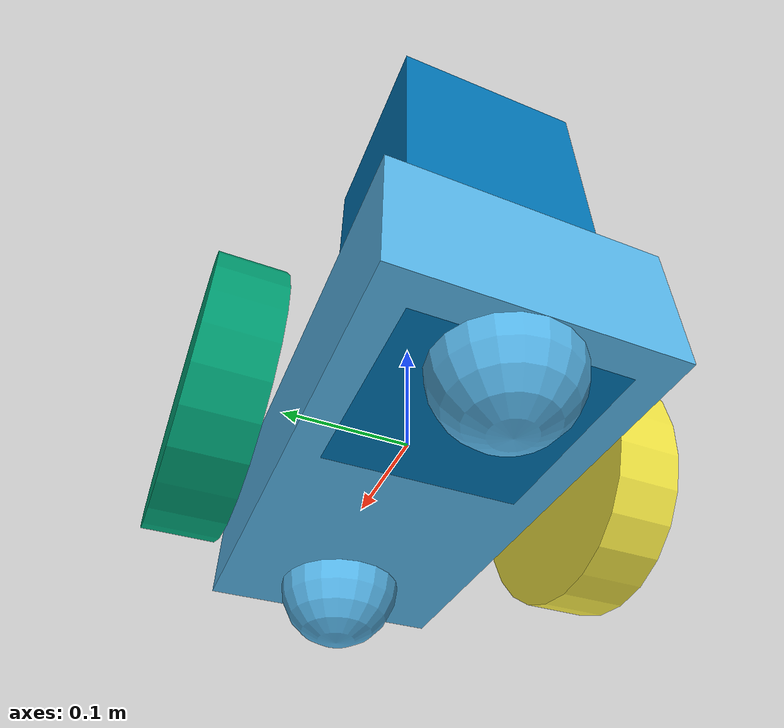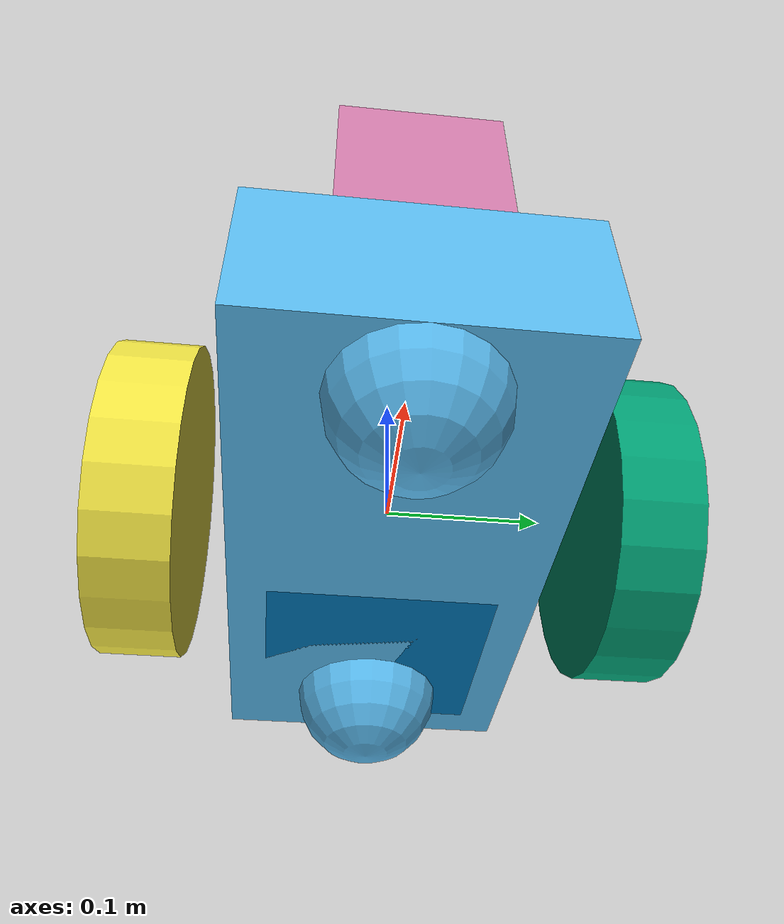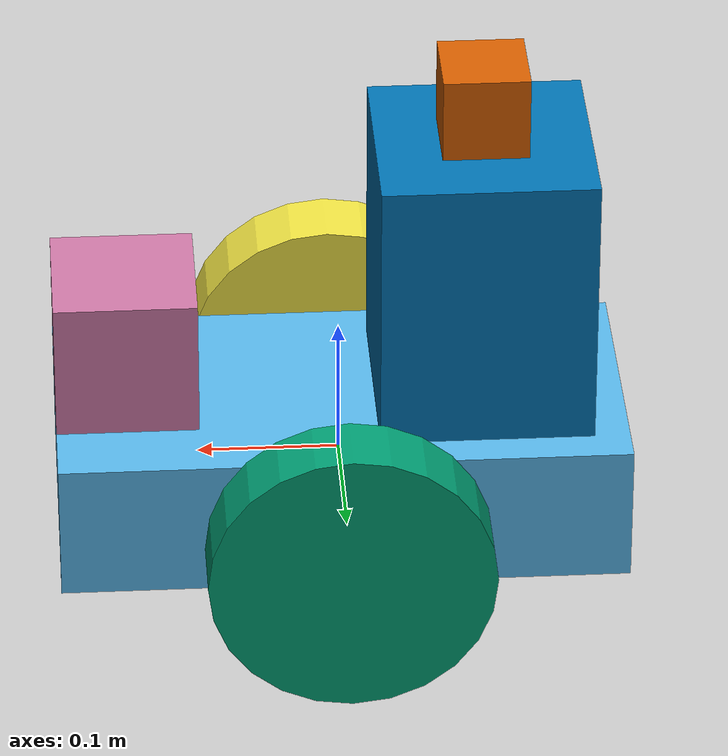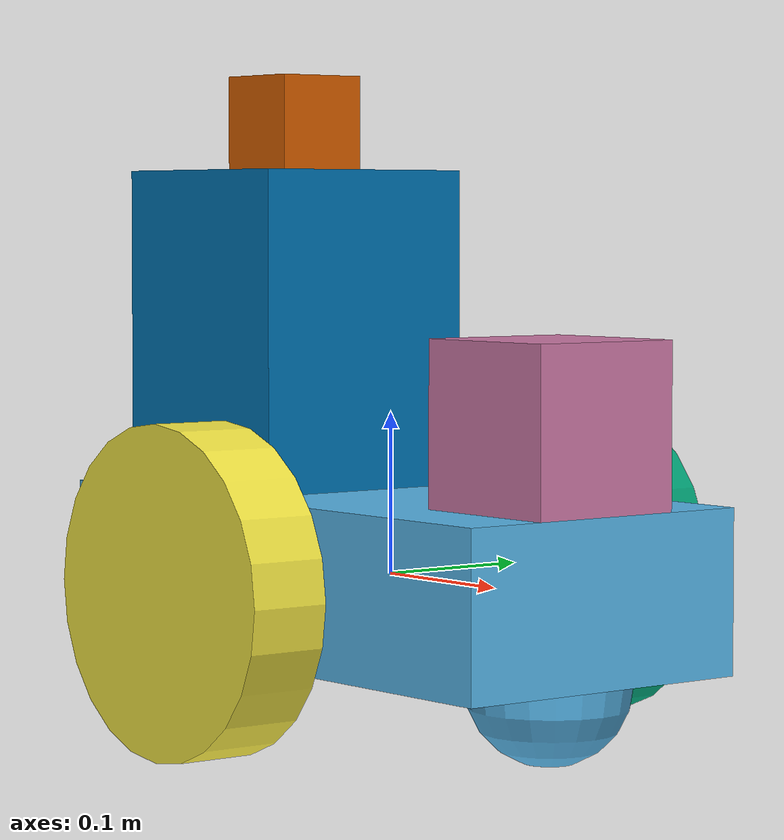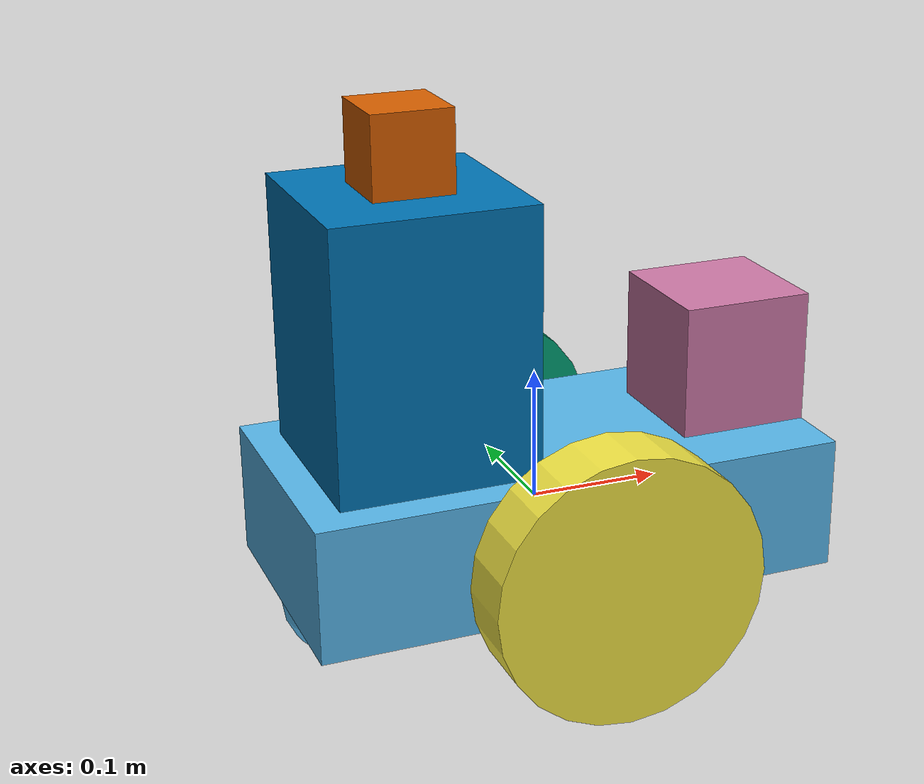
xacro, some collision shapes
<?xml version='1.0'?>

<robot name="udacity_bot" xmlns:xacro="http://www.ros.org/wiki/xacro">
<xacro:include filename="$(find udacity_bot)/urdf/udacity_bot.gazebo" />

  <link name="robot_footprint"></link>

  <joint name="robot_footprint_joint" type="fixed">
    <origin xyz="0 0 0" rpy="0 0 0" />
    <parent link="robot_footprint"/>
    <child link="chassis" />
  </joint>

  <link name='chassis'>

    <pose>0 0 0.1 0 0 0</pose>

    <inertial>
      <mass value="15.0"/>
      <origin xyz="0.0 0 0" rpy=" 0 0 0"/>
      <inertia
          ixx="0.1" ixy="0" ixz="0"
          iyy="0.1" iyz="0"
          izz="0.1"
      />
    </inertial>

    <collision name='collision'>
      <origin xyz="0 0 0" rpy=" 0 0 0"/>
      <geometry>
        <box size=".4 .2 .1"/>
      </geometry>
    </collision>

    <visual name='chassis_visual'>
      <origin xyz="0 0 0" rpy=" 0 0 0"/>
      <geometry>
        <box size=".4 .2 .1"/>
      </geometry>
    </visual>

    <collision name='back_caster_collision'>
      <origin xyz="-0.15 0 -0.05" rpy=" 0 0 0"/>
      <geometry>
        <sphere radius="0.05"/>
      </geometry>
      <surface>
        <friction>
          <ode>
            <mu>0</mu>
            <mu2>0</mu2>
            <slip1>1.0</slip1>
            <slip2>1.0</slip2>
          </ode>
        </friction>
      </surface>
    </collision>

    <visual name='back_caster_visual'>
      <origin xyz="-0.15 0 -0.05" rpy=" 0 0 0"/>
      <geometry>
        <sphere radius="0.05"/>
      </geometry>
    </visual>

    <collision name='front_caster_collision'>
      <origin xyz="0.15 0 -0.05" rpy=" 0 0 0"/>
      <geometry>
        <sphere radius="0.05"/>
      </geometry>
      <surface>
        <friction>
          <ode>
            <mu>0</mu>
            <mu2>0</mu2>
            <slip1>1.0</slip1>
            <slip2>1.0</slip2>
          </ode>
        </friction>
      </surface>
    </collision>

    <visual name='front_caster_visual'>
      <origin xyz="0.15 0 -0.05" rpy=" 0 0 0"/>
      <geometry>
        <sphere radius="0.05"/>
      </geometry>
    </visual>

   </link>

 <link name="left_wheel">
 <inertial>
      <mass value="5.0"/>
      <origin xyz="0 0 0" rpy=" 0 1.5707 1.5707"/>
      <inertia
          ixx="0.1" ixy="0" ixz="0"
          iyy="0.1" iyz="0"
          izz="0.1"
      />
    </inertial>

    <collision name='collision'>
      <origin xyz="0 0 0" rpy=" 0 1.5707 1.5707"/>
      <geometry>
         <cylinder radius="0.1" length="0.05"/>
      </geometry>
    </collision>

    <visual name='chassis_visual'>
      <origin xyz="0 0 0" rpy=" 0 1.5707 1.5707"/>
      <geometry>
         <cylinder radius="0.1" length="0.05"/>
      </geometry>
    </visual>
   </link>

 <link name="right_wheel">
 <inertial>
      <mass value="5.0"/>
      <origin xyz="0 0 0" rpy=" 0 1.5707 1.5707"/>
      <inertia
          ixx="0.1" ixy="0" ixz="0"
          iyy="0.1" iyz="0"
          izz="0.1"
      />
    </inertial>

    <collision name='collision'>
      <origin xyz="0 0 0" rpy=" 0 1.5707 1.5707"/>
      <geometry>
         <cylinder radius="0.1" length="0.05"/>
      </geometry>
    </collision>

    <visual name='chassis_visual'>
      <origin xyz="0 0 0" rpy=" 0 1.5707 1.5707"/>
      <geometry>
         <cylinder radius="0.1" length="0.05"/>
      </geometry>
    </visual>
   </link>

    <joint type="continuous" name="left_wheel_hinge">
	    <origin xyz="0 0.15 0" rpy="0 0 0"/>
	    <parent link="chassis"/>
            <child link="left_wheel"/>
            <axis xyz="0 1 0" rpy="0 0 0"/>
	    <limit effort="10000" velocity="1000"/>
	    <joint_properties damping="1.0" friction="1.0"/>
   </joint>

   <joint type="continuous" name="right_wheel_hinge">
        <origin xyz="0 -0.15 0" rpy="0 0 0"/>
        <parent link="chassis"/>
        <child link="right_wheel"/>
        <axis xyz="0 1 0" rpy="0 0 0"/>
        <limit effort="10000" velocity="1000"/>
        <joint_properties damping="1.0" friction="1.0"/>
   </joint>

   <link name="body">
     <inertial>
        <mass value="0.1"/>
        <origin xyz="-0.05 0 0.1" rpy=" 0 0 0"/>
        <inertia
            ixx="1e-6" ixy="0" ixz="0"
            iyy="1e-6" iyz="0" izz="1e-6"
        />
      </inertial>

      <collision name='collision'>
        <origin xyz="-0.05 0 0.1" rpy=" 0 0 0"/>
        <geometry>
          <box size="0.1 0.1 0.3"/>
        </geometry>
      </collision>

      <visual name='chassis_visual'>
        <origin xyz="-0.05 0 0.1" rpy=" 0 0 0"/>
        <geometry>
           <box size="0.15 0.15 0.3"/>
        </geometry>
      </visual>
     </link>

     <joint type="fixed" name="body_joint">
          <origin xyz="-0.05 0 0" rpy="0 0 0"/>
          <parent link="chassis"/>
          <child link="body"/>
          <axis xyz="0 1 0" rpy="0 0 0"/>
     </joint>

 <link name="camera">
   <inertial>
      <mass value="0.1"/>
      <origin xyz="-0.05 0 0.14" rpy=" 0 0 0"/>
      <inertia
          ixx="1e-6" ixy="0" ixz="0"
          iyy="1e-6" iyz="0" izz="1e-6"
      />
    </inertial>

    <collision name='collision'>
      <origin xyz="-0.05 0 0.14" rpy=" 0 0 0"/>
      <geometry>
        <box size="0.06 0.06 0.06"/>
      </geometry>
    </collision>

    <visual name='chassis_visual'>
      <origin xyz="-0.05 0 0.14" rpy=" 0 0 0"/>
      <geometry>
         <box size="0.06 0.06 0.06"/>
      </geometry>
    </visual>
   </link>

   <joint type="fixed" name="camera_joint">
        <origin xyz="-0.05 0 0.14" rpy="0 0 0"/>
        <parent link="chassis"/>
        <child link="camera"/>
        <axis xyz="0 1 0" rpy="0 0 0"/>
   </joint>

 <link name="hokuyo">
   <inertial>
      <mass value="0.1"/>
      <origin xyz="0 0 0" rpy=" 0 0 0"/>
      <inertia
          ixx="1e-6" ixy="0" ixz="0"
          iyy="1e-6" iyz="0" izz="1e-6"
      />
    </inertial>

    <collision name='collision'>
      <origin xyz="0 0 0" rpy=" 0 0 0"/>
      <geometry>
        <box size="0.1 0.1 0.1"/>
      </geometry>
    </collision>

    <visual name='chassis_visual'>
      <origin xyz="0 0 0" rpy=" 0 0 0"/>
      <geometry>
         <mesh filename="package://udacity_bot/meshes/hokuyo.dae"/>
      </geometry>
    </visual>
   </link>

   <joint type="fixed" name="hokuyo_joint">
        <origin xyz="0.15 0 0.1" rpy="0 0 0"/>
        <parent link="chassis"/>
        <child link="hokuyo"/>
        <axis xyz="0 1 0" rpy="0 0 0"/>
   </joint>

</robot>
